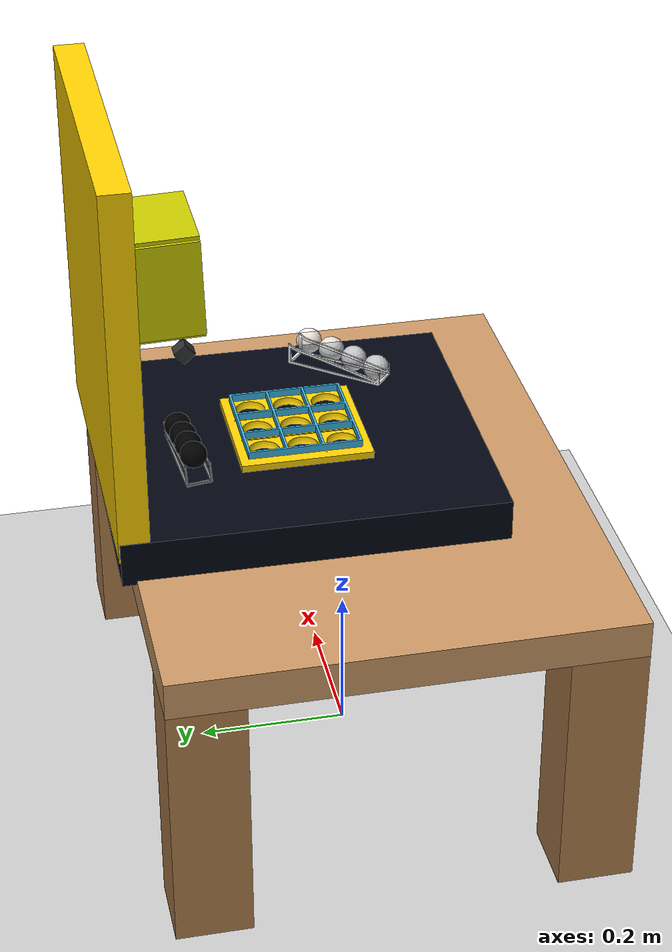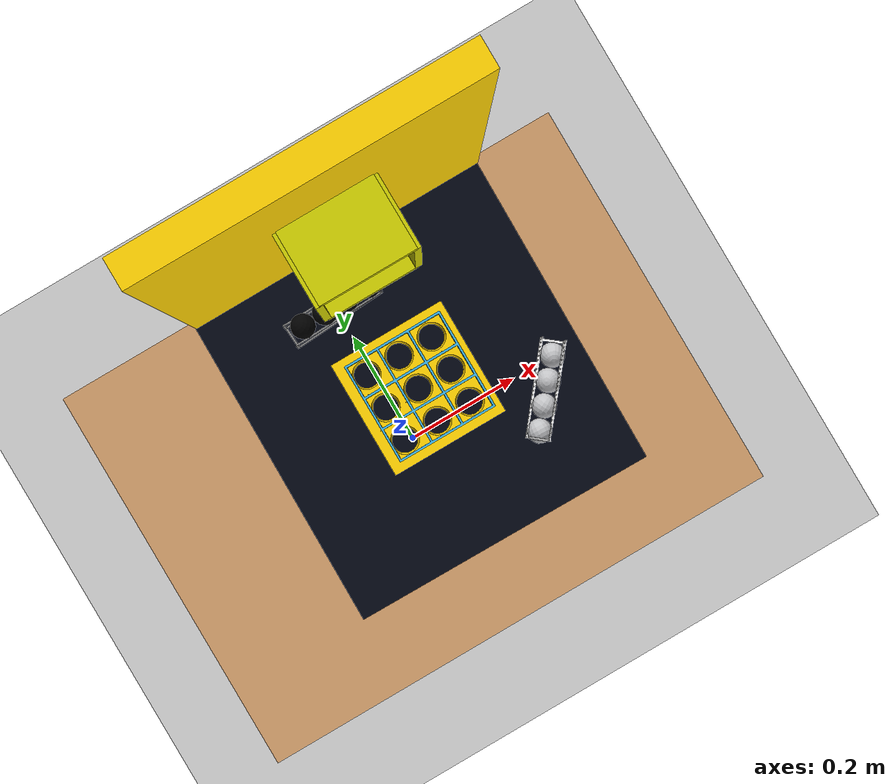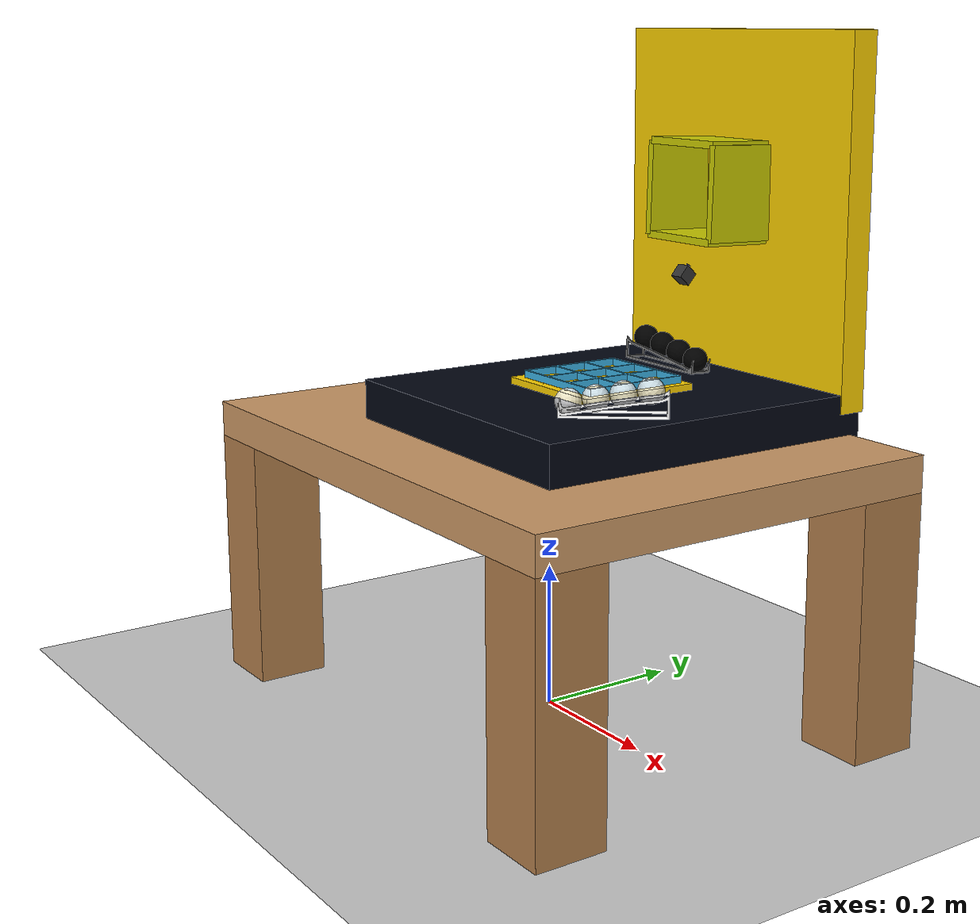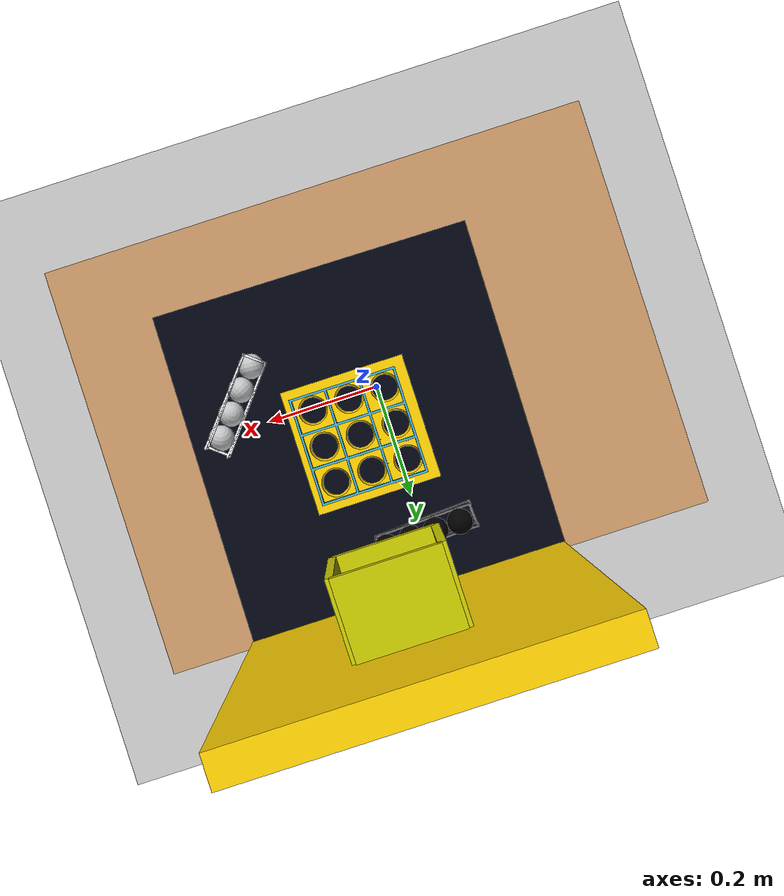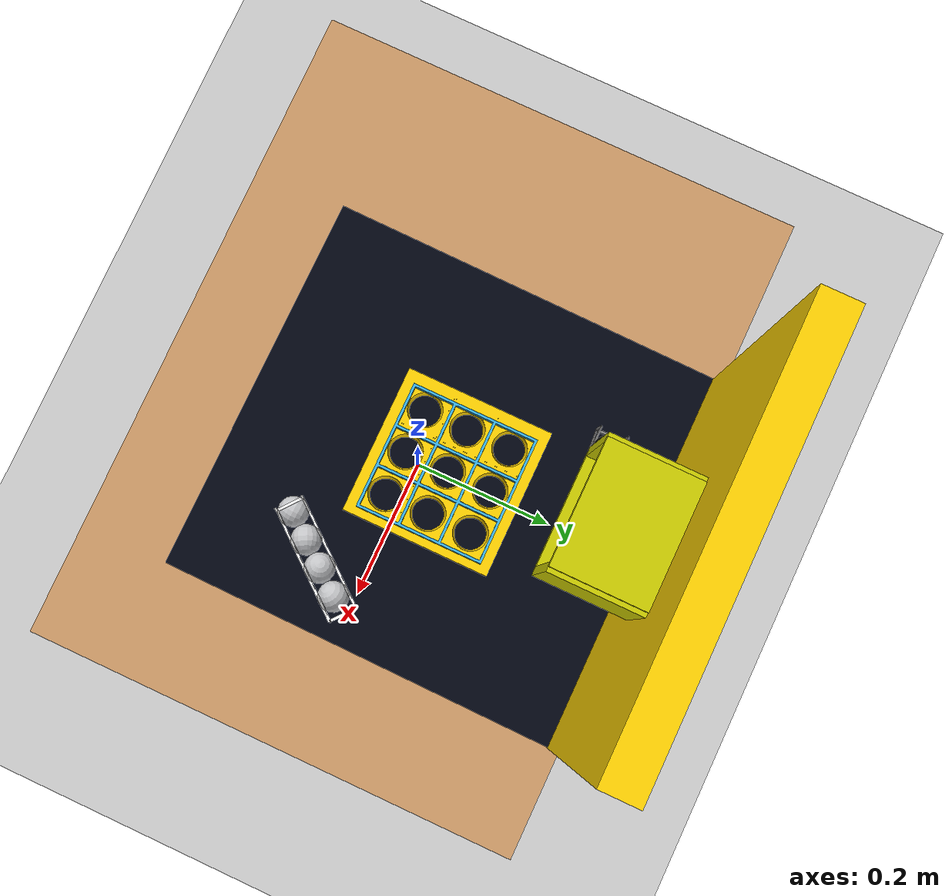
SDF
<sdf version="1.10">
 <world name="WORKINGPROTO">
  <physics name="1ms" type="ignored">
   <max_step_size>0.001</max_step_size>
   <real_time_factor>1</real_time_factor>
   <real_time_update_rate>1000</real_time_update_rate>
  </physics>
  <plugin name="gz::sim::systems::Physics" filename="gz-sim-physics-system"/>
  <plugin name="gz::sim::systems::UserCommands" filename="gz-sim-user-commands-system"/>
  <plugin name="gz::sim::systems::SceneBroadcaster" filename="gz-sim-scene-broadcaster-system"/>
  <plugin name="gz::sim::systems::Sensors" filename="gz-sim-sensors-system">
   <render_engine>ogre2</render_engine>
  </plugin>
  <plugin name="gz::sim::systems::ImageDisplay" filename="gz-sim-image-display-system"/>
  <gravity>0 0 -9.8000000000000007</gravity>
  <magnetic_field>5.5644999999999998e-06 2.2875799999999999e-05 -4.2388400000000002e-05</magnetic_field>
  <atmosphere type="adiabatic"/>
  <scene>
   <ambient>0.400000006 0.400000006 0.400000006 1</ambient>
   <background>0.699999988 0.699999988 0.699999988 1</background>
   <shadows>true</shadows>
  </scene>
  <model name="ground_plane">
   <static>true</static>
   <link name="link">
    <collision name="collision">
     <geometry><plane><normal>0 0 1</normal><size>100 100</size></plane></geometry>
     <surface>
      <contact><collide_bitmask>65535</collide_bitmask><ode><mu>100</mu><mu2>50</mu2></ode></contact>
      <friction><ode><mu>100</mu><mu2>50</mu2></ode></friction>
     </surface>
    </collision>
    <visual name="visual">
     <cast_shadows>false</cast_shadows>
     <geometry><plane><normal>0 0 1</normal><size>100 100</size></plane></geometry>
     <material>
      <ambient>0.800000012 0.800000012 0.800000012 1</ambient>
      <diffuse>0.800000012 0.800000012 0.800000012 1</diffuse>
      <specular>0 0 0 1</specular>
     </material>
    </visual>
    <inertial>
     <mass>1</mass>
     <inertia><ixx>1</ixx><ixy>0</ixy><ixz>0</ixz><iyy>1</iyy><iyz>0</iyz><izz>1</izz></inertia>
    </inertial>
   </link>
  </model>
  <model name="study_table">
   <static>true</static>
   <link name="table_link">
    <inertial>
     <mass>50</mass>
     <inertia><ixx>10</ixx><iyy>8</iyy><izz>6</izz><ixy>0</ixy><ixz>0</ixz><iyz>0</iyz></inertia>
    </inertial>
    <visual name="table_top">
     <pose>0 0 0.375 0 0 0</pose>
     <geometry><box><size>0.80000000000000004 0.59999999999999998 0.050000000000000003</size></box></geometry>
     <material>
      <ambient>0.800000012 0.600000024 0.400000006 1</ambient>
      <diffuse>0.800000012 0.600000024 0.400000006 1</diffuse>
     </material>
    </visual>
    <visual name="table_leg1">
     <pose>0.34999999999999998 0.25 0.17499999999999999 0 0 0</pose>
     <geometry><box><size>0.10000000000000001 0.10000000000000001 0.34999999999999998</size></box></geometry>
     <material>
      <ambient>0.699999988 0.5 0.300000012 1</ambient>
      <diffuse>0.699999988 0.5 0.300000012 1</diffuse>
     </material>
    </visual>
    <visual name="table_leg2">
     <pose>-0.34999999999999998 0.25 0.17499999999999999 0 0 0</pose>
     <geometry><box><size>0.10000000000000001 0.10000000000000001 0.34999999999999998</size></box></geometry>
     <material>
      <ambient>0.699999988 0.5 0.300000012 1</ambient>
      <diffuse>0.699999988 0.5 0.300000012 1</diffuse>
     </material>
    </visual>
    <visual name="table_leg3">
     <pose>0.34999999999999998 -0.25 0.17499999999999999 0 0 0</pose>
     <geometry><box><size>0.10000000000000001 0.10000000000000001 0.34999999999999998</size></box></geometry>
     <material>
      <ambient>0.699999988 0.5 0.300000012 1</ambient>
      <diffuse>0.699999988 0.5 0.300000012 1</diffuse>
     </material>
    </visual>
    <visual name="table_leg4">
     <pose>-0.34999999999999998 -0.25 0.17499999999999999 0 0 0</pose>
     <geometry><box><size>0.10000000000000001 0.10000000000000001 0.34999999999999998</size></box></geometry>
     <material>
      <ambient>0.699999988 0.5 0.300000012 1</ambient>
      <diffuse>0.699999988 0.5 0.300000012 1</diffuse>
     </material>
    </visual>
    <collision name="table_collision">
     <pose>0 0 0.375 0 0 0</pose>
     <geometry><box><size>0.80000000000000004 0.59999999999999998 0.050000000000000003</size></box></geometry>
    </collision>
   </link>
  </model>
  <model name="guard_rail">
   <static>true</static>
   <pose>-0.052531500000000002 -0.040552699999999997 0.435197 0 0 0</pose>
   <link name="rail_link">
    <inertial>
     <mass>10</mass>
     <inertia><ixx>1</ixx><iyy>1</iyy><izz>1</izz><ixy>0</ixy><ixz>0</ixz><iyz>0</iyz></inertia>
    </inertial>
    <visual name="rail_visual">
     <geometry>
      <mesh>
       <scale>0.001 0.001 0.001</scale>
       <uri>file:///home/sukritchopra/ros2_ws/src/jetrover_description/models/jetrover/meshes_1/EXTERNAL_MESHES/GUARD_RAILS6.stl</uri>
      </mesh>
     </geometry>
     <material>
      <ambient>0.235294119 0.70588237 0.90196079 1</ambient>
      <diffuse>0.235294119 0.70588237 0.90196079 1</diffuse>
     </material>
    </visual>
    <collision name="rail_collision">
     <geometry>
      <mesh>
       <scale>0.001 0.001 0.001</scale>
       <uri>file:///home/sukritchopra/ros2_ws/src/jetrover_description/models/jetrover/meshes_1/EXTERNAL_MESHES/GUARD_RAILS6.stl</uri>
      </mesh>
     </geometry>
    </collision>
   </link>
  </model>
  <model name="wall">
   <static>true</static>
   <pose>0.044432800000000001 0.30083199999999999 0.82922700000000005 0 0 0</pose>
   <link name="wall_link">
    <inertial>
     <mass>20000000</mass>
     <inertia>
      <ixx>1.6699999999999999</ixx>
      <iyy>2.6699999999999999</iyy>
      <izz>1.0700000000000001</izz>
      <ixy>0</ixy>
      <ixz>0</ixz>
      <iyz>0</iyz>
     </inertia>
    </inertial>
    <visual name="wall_base">
     <pose>0 0 -0.14999999999999999 0 0 0</pose>
     <geometry><box><size>0.44999999999999979 0.040000000000000001 0.49999999999999789</size></box></geometry>
     <material><ambient>1 0.824000001 0 1</ambient><diffuse>1 0.824000001 0 1</diffuse></material>
    </visual>
    <collision name="wall_base_collision">
     <pose>0 0 -0.14999999999999999 0 0 0</pose>
     <geometry><box><size>0.44999999999999979 0.040000000000000001 0.49999999999999789</size></box></geometry>
    </collision>
   </link>
  </model>
  <model name="enclosure_floor">
   <static>true</static>
   <pose>0.19129599999999999 0.064957200000000007 0.425506 1.5700000000000001 -7.742320000081095e-06 1.5605700000000002</pose>
   <link name="enclosure_floor_link">
    <inertial>
     <mass>20000000</mass>
     <inertia>
      <ixx>1.6699999999999999</ixx>
      <iyy>2.6699999999999999</iyy>
      <izz>1.0700000000000001</izz>
      <ixy>0</ixy>
      <ixz>0</ixz>
      <iyz>0</iyz>
     </inertia>
    </inertial>
    <visual name="enclosure_floor_base">
     <pose>0 0 -0.14999999999999999 0 0 0</pose>
     <geometry><box><size>0.49999999999999778 0.059999999999999998 0.44999999999999979</size></box></geometry>
     <material>
      <ambient>0 0.00400000019 0.0149999997 1</ambient>
      <diffuse>0.00400000019 0.0199999996 0.0700000003 1</diffuse>
     </material>
    </visual>
    <collision name="enclosure_floor_base_collision">
     <pose>0 0 -0.14999999999999999 0 0 0</pose>
     <geometry><box><size>0.49999999999999778 0.059999999999999998 0.44999999999999979</size></box></geometry>
    </collision>
   </link>
  </model>
  <model name="tictactoe_game">
   <static>true</static>
   <pose>-0.046944 -0.032551099999999999 0.449874 8.83834e-08 9.0853599999999958e-07 -0.00040046500000000002</pose>
   <link name="board">
    <inertial>
     <mass>2</mass>
     <inertia>
      <ixx>0.10000000000000001</ixx>
      <iyy>0.10000000000000001</iyy>
      <izz>0.10000000000000001</izz>
      <ixy>0</ixy>
      <ixz>0</ixz>
      <iyz>0</iyz>
     </inertia>
    </inertial>
    <visual name="board_visual">
     <geometry>
      <mesh>
       <scale>0.001 0.001 0.001</scale>
       <uri>file:///home/sukritchopra/ros2_ws/src/jetrover_description/models/jetrover/meshes_1/EXTERNAL_MESHES/tictactoe_board3.stl</uri>
      </mesh>
     </geometry>
     <material><ambient>1 0.824000001 0 1</ambient><diffuse>1 0.824000001 0 1</diffuse></material>
    </visual>
    <collision name="board_collision">
     <geometry>
      <mesh>
       <scale>0.001 0.001 0.001</scale>
       <uri>file:///home/sukritchopra/ros2_ws/src/jetrover_description/models/jetrover/meshes_1/EXTERNAL_MESHES/tictactoe_board3.stl</uri>
      </mesh>
     </geometry>
    </collision>
   </link>
  </model>
  <model name="o_piece_1">
   <static>false</static>
   <pose>-0.051335295259347047 0.20526938864927538 0.49428260183502604 0.040338958464787938 0.58633381354756786 2.324792556048656</pose>
   <link name="o_link">
    <inertial>
     <mass>0.0027000000000000001</mass>
     <inertia>
      <ixx>1.0000000000000001e-05</ixx>
      <iyy>1.0000000000000001e-05</iyy>
      <izz>1.0000000000000001e-05</izz>
      <ixy>0</ixy>
      <ixz>0</ixz>
      <iyz>0</iyz>
     </inertia>
    </inertial>
    <visual name="o_visual">
     <geometry><sphere><radius>0.017500000000000002</radius></sphere></geometry>
     <material><ambient>0 0 0 1</ambient><diffuse>0 0 0 1</diffuse></material>
    </visual>
    <collision name="o_collision">
     <geometry><sphere><radius>0.017500000000000002</radius></sphere></geometry>
    </collision>
   </link>
  </model>
  <model name="o_piece_2">
   <static>false</static>
   <pose>0.017689119491048882 0.20858797510366434 0.48315120382908172 1.0491400330505665 -0.30371164217086133 -2.7039300475844641</pose>
   <link name="o_link">
    <inertial>
     <mass>0.0027000000000000001</mass>
     <inertia>
      <ixx>1.0000000000000001e-05</ixx>
      <iyy>1.0000000000000001e-05</iyy>
      <izz>1.0000000000000001e-05</izz>
      <ixy>0</ixy>
      <ixz>0</ixz>
      <iyz>0</iyz>
     </inertia>
    </inertial>
    <visual name="o_visual">
     <geometry><sphere><radius>0.017500000000000002</radius></sphere></geometry>
     <material><ambient>0 0 0 1</ambient><diffuse>0 0 0 1</diffuse></material>
    </visual>
    <collision name="o_collision">
     <geometry><sphere><radius>0.017500000000000002</radius></sphere></geometry>
    </collision>
   </link>
  </model>
  <model name="o_piece_4">
   <static>false</static>
   <pose>-0.016757200906631811 0.2069610388421626 0.48913516052496658 -0.2601920416835799 -0.73348468481402407 -0.60735958301622128</pose>
   <link name="o_link">
    <inertial>
     <mass>0.0027000000000000001</mass>
     <inertia>
      <ixx>1.0000000000000001e-05</ixx>
      <iyy>1.0000000000000001e-05</iyy>
      <izz>1.0000000000000001e-05</izz>
      <ixy>0</ixy>
      <ixz>0</ixz>
      <iyz>0</iyz>
     </inertia>
    </inertial>
    <visual name="o_visual">
     <geometry><sphere><radius>0.017500000000000002</radius></sphere></geometry>
     <material><ambient>0 0 0 1</ambient><diffuse>0 0 0 1</diffuse></material>
    </visual>
    <collision name="o_collision">
     <geometry><sphere><radius>0.017500000000000002</radius></sphere></geometry>
    </collision>
   </link>
  </model>
  <model name="o_piece_5">
   <static>false</static>
   <pose>0.052094880049371205 0.21044906895776272 0.47700523013230467 1.9099221562503126 0.18802652929228311 -0.076904005663366345</pose>
   <link name="o_link">
    <inertial>
     <mass>0.0027000000000000001</mass>
     <inertia>
      <ixx>1.0000000000000001e-05</ixx>
      <iyy>1.0000000000000001e-05</iyy>
      <izz>1.0000000000000001e-05</izz>
      <ixy>0</ixy>
      <ixz>0</ixz>
      <iyz>0</iyz>
     </inertia>
    </inertial>
    <visual name="o_visual">
     <geometry><sphere><radius>0.017500000000000002</radius></sphere></geometry>
     <material><ambient>0 0 0 1</ambient><diffuse>0 0 0 1</diffuse></material>
    </visual>
    <collision name="o_collision">
     <geometry><sphere><radius>0.017500000000000002</radius></sphere></geometry>
    </collision>
   </link>
  </model>
  <model name="robot_box">
   <static>true</static>
   <pose>0.048892199999999997 0.232456 0.71249099999999999 1.54 0 0</pose>
   <link name="box_link">
    <inertial>
     <mass>5</mass>
     <inertia>
      <ixx>0.10000000000000001</ixx>
      <iyy>0.10000000000000001</iyy>
      <izz>0.10000000000000001</izz>
      <ixy>0</ixy>
      <ixz>0</ixz>
      <iyz>0</iyz>
     </inertia>
    </inertial>
    <visual name="front_wall">
     <pose>0.065000000000000002 0 0 0 0 0</pose>
     <geometry><box><size>0.01 0.13 0.105</size></box></geometry>
     <material>
      <ambient>0.800000012 0.800000012 3.00000003e-09 1</ambient>
      <diffuse>0.800000012 0.800000012 3.00000003e-09 1</diffuse>
     </material>
    </visual>
    <collision name="front_wall_collision">
     <pose>0.065000000000000002 0 0 0 0 0</pose>
     <geometry><box><size>0.01 0.13 0.105</size></box></geometry>
    </collision>
    <visual name="back_wall">
     <pose>-0.065000000000000002 0 0 0 0 0</pose>
     <geometry><box><size>0.01 0.13 0.105</size></box></geometry>
     <material>
      <ambient>0.800000012 0.800000012 3.00000003e-09 1</ambient>
      <diffuse>0.800000012 0.800000012 3.00000003e-09 1</diffuse>
     </material>
    </visual>
    <collision name="back_wall_collision">
     <pose>-0.065000000000000002 0 0 0 0 0</pose>
     <geometry><box><size>0.01 0.13 0.105</size></box></geometry>
    </collision>
    <visual name="left_wall">
     <pose>0 0.065000000000000002 0 0 0 0</pose>
     <geometry><box><size>0.13 0.01 0.105</size></box></geometry>
     <material>
      <ambient>0.800000012 0.800000072 3.00000003e-09 1</ambient>
      <diffuse>0.800000012 0.800000012 3.00000003e-09 1</diffuse>
     </material>
    </visual>
    <collision name="left_wall_collision">
     <pose>0 0.065000000000000002 0 0 0 0</pose>
     <geometry><box><size>0.13 0.01 0.105</size></box></geometry>
    </collision>
    <visual name="right_wall">
     <pose>0 -0.065000000000000002 0 0 0 0</pose>
     <geometry><box><size>0.13 0.01 0.105</size></box></geometry>
     <material>
      <ambient>0.800000012 0.800000012 3.00000003e-09 1</ambient>
      <diffuse>0.800000012 0.800000012 3.00000003e-09 1</diffuse>
     </material>
    </visual>
    <collision name="right_wall_collision">
     <pose>0 -0.065000000000000002 0 0 0 0</pose>
     <geometry><box><size>0.13 0.01 0.105</size></box></geometry>
    </collision>
   </link>
  </model>
  <model name="x_piece_1">
   <static>false</static>
   <pose>0.19745403715970861 -0.026345844481419814 0.4837603911264417 3.1003890520363058 0.26486558784637421 3.0295614546259544</pose>
   <link name="x_link">
    <inertial>
     <mass>0.0027000000000000001</mass>
     <inertia>
      <ixx>1.0000000000000001e-05</ixx>
      <iyy>1.0000000000000001e-05</iyy>
      <izz>1.0000000000000001e-05</izz>
      <ixy>0</ixy>
      <ixz>0</ixz>
      <iyz>0</iyz>
     </inertia>
    </inertial>
    <visual name="x_visual">
     <geometry><sphere><radius>0.017500000000000002</radius></sphere></geometry>
     <material><ambient>1 1 1 0.800000012</ambient><diffuse>1 1 1 0.800000012</diffuse></material>
    </visual>
    <collision name="x_collision">
     <geometry><sphere><radius>0.017500000000000002</radius></sphere></geometry>
    </collision>
   </link>
  </model>
  <model name="x_piece_2">
   <static>false</static>
   <pose>0.17572515218086127 -0.05323220022638768 0.47828489006330682 1.3524645457892697 -0.44476921483233728 2.1323552670681338</pose>
   <link name="x_link">
    <inertial>
     <mass>0.0027000000000000001</mass>
     <inertia>
      <ixx>1.0000000000000001e-05</ixx>
      <iyy>1.0000000000000001e-05</iyy>
      <izz>1.0000000000000001e-05</izz>
      <ixy>0</ixy>
      <ixz>0</ixz>
      <iyz>0</iyz>
     </inertia>
    </inertial>
    <visual name="x_visual">
     <geometry><sphere><radius>0.017500000000000002</radius></sphere></geometry>
     <material><ambient>1 1 1 0.800000012</ambient><diffuse>1 1 1 0.800000012</diffuse></material>
    </visual>
    <collision name="x_collision">
     <geometry><sphere><radius>0.017500000000000002</radius></sphere></geometry>
    </collision>
   </link>
  </model>
  <model name="x_piece_4">
   <static>false</static>
   <pose>0.21925965892136054 0.00063546179513970346 0.48839966960564352 3.0378870854167364 -0.70401654286175386 1.3188473869655701</pose>
   <link name="x_link">
    <inertial>
     <mass>0.0027000000000000001</mass>
     <inertia>
      <ixx>1.0000000000000001e-05</ixx>
      <iyy>1.0000000000000001e-05</iyy>
      <izz>1.0000000000000001e-05</izz>
      <ixy>0</ixy>
      <ixz>0</ixz>
      <iyz>0</iyz>
     </inertia>
    </inertial>
    <visual name="x_visual">
     <geometry><sphere><radius>0.017500000000000002</radius></sphere></geometry>
     <material><ambient>1 1 1 0.800000012</ambient><diffuse>1 1 1 0.800000012</diffuse></material>
    </visual>
    <collision name="x_collision">
     <geometry><sphere><radius>0.017500000000000002</radius></sphere></geometry>
    </collision>
   </link>
  </model>
  <model name="x_piece_5">
   <static>false</static>
   <pose>0.15351317309536022 -0.079790859007458276 0.4731602011795597 1.6656728233178353 0.25211632254321276 3.1147828158402913</pose>
   <link name="x_link">
    <inertial>
     <mass>0.0027000000000000001</mass>
     <inertia>
      <ixx>1.0000000000000001e-05</ixx>
      <iyy>1.0000000000000001e-05</iyy>
      <izz>1.0000000000000001e-05</izz>
      <ixy>0</ixy>
      <ixz>0</ixz>
      <iyz>0</iyz>
     </inertia>
    </inertial>
    <visual name="x_visual">
     <geometry><sphere><radius>0.017500000000000002</radius></sphere></geometry>
     <material><ambient>1 1 1 0.800000012</ambient><diffuse>1 1 1 0.800000012</diffuse></material>
    </visual>
    <collision name="x_collision">
     <geometry><sphere><radius>0.017500000000000002</radius></sphere></geometry>
    </collision>
   </link>
  </model>
  <model name="ball_store_grey">
   <static>true</static>
   <pose>-0.0048478376120328912 0.20520499348640445 0.45594999194145197 0.067844003038950454 -0.01549630037043407 -3.0836599962708142</pose>
   <link name="ball_store_link">
    <inertial>
     <mass>1</mass>
     <inertia>
      <ixx>0.10000000000000001</ixx>
      <iyy>0.10000000000000001</iyy>
      <izz>0.10000000000000001</izz>
      <ixy>0</ixy>
      <ixz>0</ixz>
      <iyz>0</iyz>
     </inertia>
    </inertial>
    <visual name="ball_store_visual">
     <geometry>
      <mesh>
       <scale>0.001 0.001 0.001</scale>
       <uri>file:///home/sukritchopra/ros2_ws/src/jetrover_description/models/jetrover/meshes_1/EXTERNAL_MESHES/Slider_Bracket.stl</uri>
      </mesh>
     </geometry>
     <material><ambient>0.5 0.5 0.5 1</ambient><diffuse>0.5 0.5 0.5 1</diffuse></material>
    </visual>
    <collision name="ball_store_collision">
     <geometry>
      <mesh>
       <scale>0.001 0.001 0.001</scale>
       <uri>file:///home/sukritchopra/ros2_ws/src/jetrover_description/models/jetrover/meshes_1/EXTERNAL_MESHES/Slider_Bracket.stl</uri>
      </mesh>
     </geometry>
    </collision>
   </link>
  </model>
  <model name="ball_store_white">
   <static>true</static>
   <pose>0.18989700000000001 -0.035378399999999997 0.45074999999999998 0 0 0.89109000000000005</pose>
   <link name="ball_store_link">
    <inertial>
     <mass>1</mass>
     <inertia>
      <ixx>0.10000000000000001</ixx>
      <iyy>0.10000000000000001</iyy>
      <izz>0.10000000000000001</izz>
      <ixy>0</ixy>
      <ixz>0</ixz>
      <iyz>0</iyz>
     </inertia>
    </inertial>
    <visual name="ball_store_visual">
     <geometry>
      <mesh>
       <scale>0.001 0.001 0.001</scale>
       <uri>file:///home/sukritchopra/ros2_ws/src/jetrover_description/models/jetrover/meshes_1/EXTERNAL_MESHES/Slider_Bracket.stl</uri>
      </mesh>
     </geometry>
     <material><ambient>1 1 1 1</ambient><diffuse>1 1 1 1</diffuse></material>
    </visual>
    <collision name="ball_store_collision">
     <geometry>
      <mesh>
       <scale>0.001 0.001 0.001</scale>
       <uri>file:///home/sukritchopra/ros2_ws/src/jetrover_description/models/jetrover/meshes_1/EXTERNAL_MESHES/Slider_Bracket.stl</uri>
      </mesh>
     </geometry>
    </collision>
   </link>
  </model>
  <model name="overhead_camera">
   <static>true</static>
   <pose>0.036840199999999997 0.20014799999999999 0.59570699999999999 0.021799500000000162 -0.73302900000000026 -1.5763800000000001</pose>
   <link name="camera_housing">
    <inertial>
     <mass>0.050000000000000003</mass>
     <inertia><ixx>0.0001</ixx><iyy>0.0001</iyy><izz>0.0001</izz><ixy>0</ixy><ixz>0</ixz><iyz>0</iyz></inertia>
    </inertial>
    <visual name="camera_body">
     <geometry><box><size>0.02 0.02 0.02</size></box></geometry>
     <material>
      <ambient>0.100000001 0.100000001 0.100000001 1</ambient>
      <diffuse>0.200000003 0.200000003 0.200000003 1</diffuse>
      <specular>0.100000001 0.100000001 0.100000001 1</specular>
     </material>
    </visual>
    <visual name="camera_lens">
     <pose>0.0080000000000000002 0.0080000000000000002 0.010999999999999999 0 0 0</pose>
     <geometry><cylinder><radius>0.0030000000000000001</radius><length>0.001</length></cylinder></geometry>
     <material>
      <ambient>0 0 0 1</ambient>
      <diffuse>0.100000001 0.100000001 0.300000012 1</diffuse>
      <specular>0.5 0.5 0.800000012 1</specular>
     </material>
    </visual>
    <visual name="led_indicator">
     <pose>-0.0080000000000000002 -0.0080000000000000002 0.010999999999999999 0 0 0</pose>
     <geometry><sphere><radius>0.001</radius></sphere></geometry>
     <material><ambient>0 1 0 1</ambient><diffuse>0 1 0 1</diffuse><specular>0.5 1 0.5 1</specular></material>
    </visual>
    <collision name="camera_collision"><geometry><box><size>0.02 0.02 0.02</size></box></geometry></collision>
    <sensor name="workspace_camera" type="camera">
     <pose>0 0 -0.0050000000000000001 3.1415899999999999 1.5707900000629724 3.1415899999999999</pose>
     <topic>/camera/image</topic>
     <update_rate>30</update_rate>
     <enable_metrics>false</enable_metrics>
     <camera>
      <horizontal_fov>1.518</horizontal_fov>
      <image>
       <width>1920</width>
       <height>1080</height>
       <format>RGB_INT8</format>
       <anti_aliasing>4</anti_aliasing>
      </image>
      <camera_info_topic>__default__</camera_info_topic>
      <triggered>false</triggered>
      <clip><near>0.10000000000000001</near><far>10</far></clip>
      <save enabled="true"><path>/tmp/camera_save_tutorial</path></save>
      <visibility_mask>4294967295</visibility_mask>
      <noise><type>none</type><mean>0</mean><stddev>0</stddev></noise>
      <distortion><k1>0</k1><k2>0</k2><k3>0</k3><p1>0</p1><p2>0</p2><center>0.5 0.5</center></distortion>
      <lens>
       <type>stereographic</type>
       <scale_to_hfov>true</scale_to_hfov>
       <cutoff_angle>1.5707963267948966</cutoff_angle>
       <env_texture_size>256</env_texture_size>
      </lens>
     </camera>
    </sensor>
   </link>
  </model>
  <light name="sun" type="directional">
   <pose>0 0 10 0 0 0</pose>
   <intensity>1</intensity>
   <direction>-0.5 0.10000000000000001 -0.90000000000000002</direction>
   <diffuse>0.800000012 0.800000012 0.800000012 1</diffuse>
   <specular>0.200000003 0.200000003 0.200000003 1</specular>
   <attenuation>
    <range>1000</range>
    <linear>0.0099999997764825821</linear>
    <constant>0.89999997615814209</constant>
    <quadratic>0.0010000000474974513</quadratic>
   </attenuation>
   <spot><inner_angle>0</inner_angle><outer_angle>0</outer_angle><falloff>0</falloff></spot>
  </light>
 </world>
</sdf>
